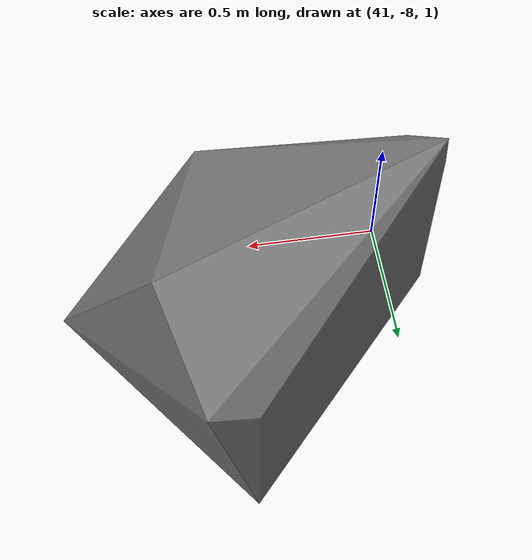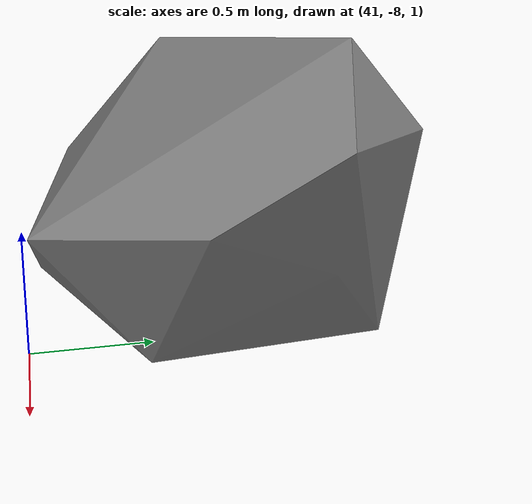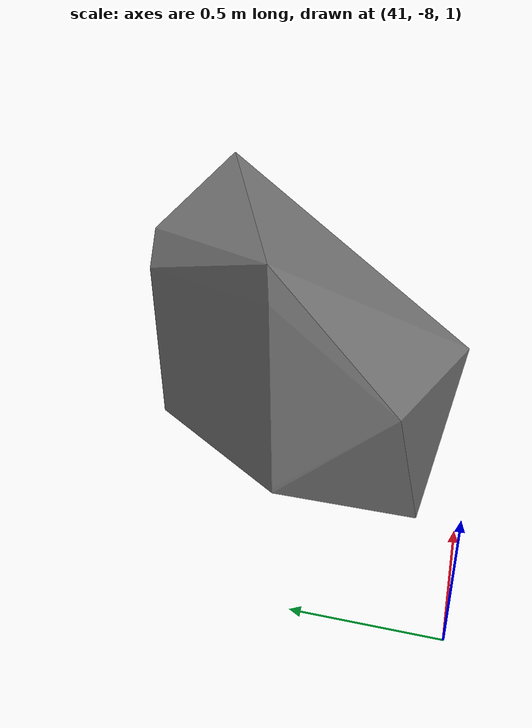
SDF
<sdf version="1.8">
 <model name="blue_mountains">
  <static>true</static>
  <link name="forest_24_19">
   <collision name="tree_26_trunk">
    <pose>41.23917 -7.153977 -0.1144466 0 0 2.291441</pose>
    <geometry><cylinder><radius>0.04930651</radius><length>2.83298</length></cylinder></geometry>
   </collision>
   <collision name="plant_26_crown_0">
    <pose>41.25218 -7.168797 -1.530936 0 0 2.291441</pose>
    <geometry>
     <mesh><uri>model://blue_mountains/meshes/canopy_7_0.dae</uri><scale>0.197226 0.197226 0.2130014</scale></mesh>
    </geometry>
   </collision>
   <collision name="plant_26_crown_1">
    <pose>41.25218 -7.168797 -1.530936 0 0 2.291441</pose>
    <geometry>
     <mesh><uri>model://blue_mountains/meshes/canopy_7_1.dae</uri><scale>0.197226 0.197226 0.2130014</scale></mesh>
    </geometry>
   </collision>
   <collision name="tree_27_trunk">
    <pose>42.59698 -2.985307 0.1404469 0 0 0.01901097</pose>
    <geometry><cylinder><radius>0.05149526</radius><length>3.089287</length></cylinder></geometry>
   </collision>
   <collision name="plant_27_crown_0">
    <pose>42.57639 -2.985699 -1.404197 0 0 0.01901097</pose>
    <geometry>
     <mesh>
      <uri>model://blue_mountains/meshes/canopy_3_0.dae</uri>
      <scale>0.2059811 0.2059811 0.2296741</scale>
     </mesh>
    </geometry>
   </collision>
   <collision name="plant_27_crown_1">
    <pose>42.57639 -2.985699 -1.404197 0 0 0.01901097</pose>
    <geometry>
     <mesh>
      <uri>model://blue_mountains/meshes/canopy_3_1.dae</uri>
      <scale>0.2059811 0.2059811 0.2296741</scale>
     </mesh>
    </geometry>
   </collision>
   <collision name="tree_29_trunk">
    <pose>49.03307 -8.363272 0.2687896 0 0 0.6293992</pose>
    <geometry><cylinder><radius>0.03886425</radius><length>2.408601</length></cylinder></geometry>
   </collision>
   <collision name="plant_29_crown_0">
    <pose>49.02051 -8.372423 -0.9355111 0 0 0.6293992</pose>
    <geometry>
     <mesh><uri>model://blue_mountains/meshes/canopy_1_0.dae</uri><scale>0.155457 0.155457 0.1779013</scale></mesh>
    </geometry>
   </collision>
   <collision name="plant_29_crown_1">
    <pose>49.02051 -8.372423 -0.9355111 0 0 0.6293992</pose>
    <geometry>
     <mesh><uri>model://blue_mountains/meshes/canopy_1_1.dae</uri><scale>0.155457 0.155457 0.1779013</scale></mesh>
    </geometry>
   </collision>
   <collision name="tree_37_trunk">
    <pose>48.14507 -5.320037 0.907001 0 0 0.9179355</pose>
    <geometry><cylinder><radius>0.06269066</radius><length>3.78658</length></cylinder></geometry>
   </collision>
   <collision name="plant_37_crown_0">
    <pose>48.12984 -5.339956 -0.9862888 0 0 0.9179355</pose>
    <geometry>
     <mesh>
      <uri>model://blue_mountains/meshes/canopy_3_0.dae</uri>
      <scale>0.2507626 0.2507626 0.2815146</scale>
     </mesh>
    </geometry>
   </collision>
   <collision name="plant_37_crown_1">
    <pose>48.12984 -5.339956 -0.9862888 0 0 0.9179355</pose>
    <geometry>
     <mesh>
      <uri>model://blue_mountains/meshes/canopy_3_1.dae</uri>
      <scale>0.2507626 0.2507626 0.2815146</scale>
     </mesh>
    </geometry>
   </collision>
   <collision name="tree_43_trunk">
    <pose>44.9219 -4.318987 0.06050891 0 0 1.81885</pose>
    <geometry><cylinder><radius>0.0564009</radius><length>2.728453</length></cylinder></geometry>
   </collision>
   <collision name="plant_43_crown_0">
    <pose>44.92744 -4.340857 -1.303717 0 0 1.81885</pose>
    <geometry>
     <mesh>
      <uri>model://blue_mountains/meshes/canopy_3_0.dae</uri>
      <scale>0.2256036 0.2256036 0.2028478</scale>
     </mesh>
    </geometry>
   </collision>
   <collision name="plant_43_crown_1">
    <pose>44.92744 -4.340857 -1.303717 0 0 1.81885</pose>
    <geometry>
     <mesh>
      <uri>model://blue_mountains/meshes/canopy_3_1.dae</uri>
      <scale>0.2256036 0.2256036 0.2028478</scale>
     </mesh>
    </geometry>
   </collision>
   <collision name="tree_45_trunk">
    <pose>45.7271 -4.829599 -0.253937 0 0 2.662113</pose>
    <geometry><cylinder><radius>0.04009444</radius><length>1.947935</length></cylinder></geometry>
   </collision>
   <collision name="plant_45_crown_0">
    <pose>45.74133 -4.836998 -1.227904 0 0 2.662113</pose>
    <geometry>
     <mesh>
      <uri>model://blue_mountains/meshes/canopy_1_0.dae</uri>
      <scale>0.1603777 0.1603777 0.143876</scale>
     </mesh>
    </geometry>
   </collision>
   <collision name="plant_45_crown_1">
    <pose>45.74133 -4.836998 -1.227904 0 0 2.662113</pose>
    <geometry>
     <mesh>
      <uri>model://blue_mountains/meshes/canopy_1_1.dae</uri>
      <scale>0.1603777 0.1603777 0.143876</scale>
     </mesh>
    </geometry>
   </collision>
   <collision name="tree_79_trunk">
    <pose>47.72966 -8.612094 0.01078934 0 0 1.369753</pose>
    <geometry><cylinder><radius>0.04150825</radius><length>2.034263</length></cylinder></geometry>
   </collision>
   <collision name="plant_79_crown_0">
    <pose>47.72635 -8.628363 -1.006342 0 0 1.369753</pose>
    <geometry>
     <mesh><uri>model://blue_mountains/meshes/canopy_4_0.dae</uri><scale>0.166033 0.166033 0.1515865</scale></mesh>
    </geometry>
   </collision>
   <collision name="plant_79_crown_1">
    <pose>47.72635 -8.628363 -1.006342 0 0 1.369753</pose>
    <geometry>
     <mesh><uri>model://blue_mountains/meshes/canopy_4_1.dae</uri><scale>0.166033 0.166033 0.1515865</scale></mesh>
    </geometry>
   </collision>
   <collision name="tree_93_trunk">
    <pose>44.7892 -3.872365 -0.09625691 0 0 -0.8977395</pose>
    <geometry><cylinder><radius>0.03836071</radius><length>2.430073</length></cylinder></geometry>
   </collision>
   <collision name="plant_93_crown_0">
    <pose>44.77964 -3.860367 -1.311293 0 0 -0.8977395</pose>
    <geometry>
     <mesh>
      <uri>model://blue_mountains/meshes/canopy_1_0.dae</uri>
      <scale>0.1534429 0.1534429 0.1794872</scale>
     </mesh>
    </geometry>
   </collision>
   <collision name="plant_93_crown_1">
    <pose>44.77964 -3.860367 -1.311293 0 0 -0.8977395</pose>
    <geometry>
     <mesh>
      <uri>model://blue_mountains/meshes/canopy_1_1.dae</uri>
      <scale>0.1534429 0.1534429 0.1794872</scale>
     </mesh>
    </geometry>
   </collision>
   <collision name="tree_126_trunk">
    <pose>43.08603 -8.754535 -0.06355896 0 0 2.874992</pose>
    <geometry><cylinder><radius>0.04795107</radius><length>2.719515</length></cylinder></geometry>
   </collision>
   <collision name="plant_126_crown_0">
    <pose>43.10453 -8.759588 -1.423316 0 0 2.874992</pose>
    <geometry>
     <mesh>
      <uri>model://blue_mountains/meshes/canopy_1_0.dae</uri>
      <scale>0.1918043 0.1918043 0.2008656</scale>
     </mesh>
    </geometry>
   </collision>
   <collision name="plant_126_crown_1">
    <pose>43.10453 -8.759588 -1.423316 0 0 2.874992</pose>
    <geometry>
     <mesh>
      <uri>model://blue_mountains/meshes/canopy_1_1.dae</uri>
      <scale>0.1918043 0.1918043 0.2008656</scale>
     </mesh>
    </geometry>
   </collision>
   <collision name="tree_178_trunk">
    <pose>46.14474 -0.08612637 0.2590178 0 0 2.139112</pose>
    <geometry><cylinder><radius>0.04142003</radius><length>2.334981</length></cylinder></geometry>
   </collision>
   <collision name="plant_178_crown_0">
    <pose>46.15366 -0.10009 -0.9084728 0 0 2.139112</pose>
    <geometry>
     <mesh>
      <uri>model://blue_mountains/meshes/canopy_1_0.dae</uri>
      <scale>0.1656801 0.1656801 0.1724636</scale>
     </mesh>
    </geometry>
   </collision>
   <collision name="plant_178_crown_1">
    <pose>46.15366 -0.10009 -0.9084728 0 0 2.139112</pose>
    <geometry>
     <mesh>
      <uri>model://blue_mountains/meshes/canopy_1_1.dae</uri>
      <scale>0.1656801 0.1656801 0.1724636</scale>
     </mesh>
    </geometry>
   </collision>
   <collision name="tree_180_trunk">
    <pose>49.07746 -7.136161 0.6830425 0 0 -1.596814</pose>
    <geometry><cylinder><radius>0.05448461</radius><length>3.204173</length></cylinder></geometry>
   </collision>
   <collision name="plant_180_crown_0">
    <pose>49.07803 -7.114374 -0.9190443 0 0 -1.596814</pose>
    <geometry>
     <mesh>
      <uri>model://blue_mountains/meshes/canopy_8_0.dae</uri>
      <scale>0.2179384 0.2179384 0.2384192</scale>
     </mesh>
    </geometry>
   </collision>
   <collision name="plant_180_crown_1">
    <pose>49.07803 -7.114374 -0.9190443 0 0 -1.596814</pose>
    <geometry>
     <mesh>
      <uri>model://blue_mountains/meshes/canopy_8_1.dae</uri>
      <scale>0.2179384 0.2179384 0.2384192</scale>
     </mesh>
    </geometry>
   </collision>
   <collision name="tree_183_trunk">
    <pose>45.35265 -6.954985 0.6009085 0 0 3.124162</pose>
    <geometry><cylinder><radius>0.05740998</radius><length>3.664733</length></cylinder></geometry>
   </collision>
   <collision name="plant_183_crown_0">
    <pose>45.37561 -6.955385 -1.231458 0 0 3.124162</pose>
    <geometry>
     <mesh>
      <uri>model://blue_mountains/meshes/canopy_0_0.dae</uri>
      <scale>0.2296399 0.2296399 0.270272</scale>
     </mesh>
    </geometry>
   </collision>
   <collision name="plant_183_crown_1">
    <pose>45.37561 -6.955385 -1.231458 0 0 3.124162</pose>
    <geometry>
     <mesh>
      <uri>model://blue_mountains/meshes/canopy_0_1.dae</uri>
      <scale>0.2296399 0.2296399 0.270272</scale>
     </mesh>
    </geometry>
   </collision>
   <collision name="tree_229_trunk">
    <pose>43.1249 -8.295154 0.07419359 0 0 -0.4515742</pose>
    <geometry><cylinder><radius>0.0608512</radius><length>2.995959</length></cylinder></geometry>
   </collision>
   <collision name="plant_229_crown_0">
    <pose>43.103 -8.284533 -1.423786 0 0 -0.4515742</pose>
    <geometry>
     <mesh>
      <uri>model://blue_mountains/meshes/canopy_2_0.dae</uri>
      <scale>0.2434048 0.2434048 0.2204288</scale>
     </mesh>
    </geometry>
   </collision>
   <collision name="plant_229_crown_1">
    <pose>43.103 -8.284533 -1.423786 0 0 -0.4515742</pose>
    <geometry>
     <mesh>
      <uri>model://blue_mountains/meshes/canopy_2_1.dae</uri>
      <scale>0.2434048 0.2434048 0.2204288</scale>
     </mesh>
    </geometry>
   </collision>
   <collision name="tree_236_trunk">
    <pose>45.48366 -7.73616 0.2999041 0 0 -1.682249</pose>
    <geometry><cylinder><radius>0.06570472</radius><length>3.009126</length></cylinder></geometry>
   </collision>
   <collision name="plant_236_crown_0">
    <pose>45.48659 -7.710041 -1.204659 0 0 -1.682249</pose>
    <geometry>
     <mesh><uri>model://blue_mountains/meshes/canopy_4_0.dae</uri><scale>0.2628189 0.2628189 0.22423</scale></mesh>
    </geometry>
   </collision>
   <collision name="plant_236_crown_1">
    <pose>45.48659 -7.710041 -1.204659 0 0 -1.682249</pose>
    <geometry>
     <mesh><uri>model://blue_mountains/meshes/canopy_4_1.dae</uri><scale>0.2628189 0.2628189 0.22423</scale></mesh>
    </geometry>
   </collision>
   <collision name="tree_240_trunk">
    <pose>49.59546 -4.356582 0.3143879 0 0 -2.191838</pose>
    <geometry><cylinder><radius>0.04521425</radius><length>2.285811</length></cylinder></geometry>
   </collision>
   <collision name="plant_240_crown_0">
    <pose>49.60599 -4.341873 -0.8285177 0 0 -2.191838</pose>
    <geometry>
     <mesh><uri>model://blue_mountains/meshes/canopy_8_0.dae</uri><scale>0.180857 0.180857 0.1700848</scale></mesh>
    </geometry>
   </collision>
   <collision name="plant_240_crown_1">
    <pose>49.60599 -4.341873 -0.8285177 0 0 -2.191838</pose>
    <geometry>
     <mesh><uri>model://blue_mountains/meshes/canopy_8_1.dae</uri><scale>0.180857 0.180857 0.1700848</scale></mesh>
    </geometry>
   </collision>
   <collision name="tree_265_trunk">
    <pose>40.57545 -6.441502 0.1171818 0 0 2.916521</pose>
    <geometry><cylinder><radius>0.06545936</radius><length>3.313856</length></cylinder></geometry>
   </collision>
   <collision name="plant_265_crown_0">
    <pose>40.60098 -6.447346 -1.539746 0 0 2.916521</pose>
    <geometry>
     <mesh>
      <uri>model://blue_mountains/meshes/canopy_3_0.dae</uri>
      <scale>0.2618374 0.2618374 0.2463698</scale>
     </mesh>
    </geometry>
   </collision>
   <collision name="plant_265_crown_1">
    <pose>40.60098 -6.447346 -1.539746 0 0 2.916521</pose>
    <geometry>
     <mesh>
      <uri>model://blue_mountains/meshes/canopy_3_1.dae</uri>
      <scale>0.2618374 0.2618374 0.2463698</scale>
     </mesh>
    </geometry>
   </collision>
   <collision name="tree_292_trunk">
    <pose>45.46919 -6.668233 -0.02580027 0 0 2.840801</pose>
    <geometry><cylinder><radius>0.03736026</radius><length>2.399995</length></cylinder></geometry>
   </collision>
   <collision name="plant_292_crown_0">
    <pose>45.48346 -6.672661 -1.225798 0 0 2.840801</pose>
    <geometry>
     <mesh><uri>model://blue_mountains/meshes/canopy_8_0.dae</uri><scale>0.149441 0.149441 0.1785812</scale></mesh>
    </geometry>
   </collision>
   <collision name="plant_292_crown_1">
    <pose>45.48346 -6.672661 -1.225798 0 0 2.840801</pose>
    <geometry>
     <mesh><uri>model://blue_mountains/meshes/canopy_8_1.dae</uri><scale>0.149441 0.149441 0.1785812</scale></mesh>
    </geometry>
   </collision>
   <collision name="tree_300_trunk">
    <pose>48.56059 -8.474123 0.4578595 0 0 2.789203</pose>
    <geometry><cylinder><radius>0.04589791</radius><length>2.830669</length></cylinder></geometry>
   </collision>
   <collision name="plant_300_crown_0">
    <pose>48.57782 -8.480459 -0.9574749 0 0 2.789203</pose>
    <geometry>
     <mesh>
      <uri>model://blue_mountains/meshes/canopy_7_0.dae</uri>
      <scale>0.1835916 0.1835916 0.2128276</scale>
     </mesh>
    </geometry>
   </collision>
   <collision name="plant_300_crown_1">
    <pose>48.57782 -8.480459 -0.9574749 0 0 2.789203</pose>
    <geometry>
     <mesh>
      <uri>model://blue_mountains/meshes/canopy_7_1.dae</uri>
      <scale>0.1835916 0.1835916 0.2128276</scale>
     </mesh>
    </geometry>
   </collision>
   <collision name="tree_327_trunk">
    <pose>41.61702 -1.313361 -0.04305975 0 0 0.3941661</pose>
    <geometry><cylinder><radius>0.04703884</radius><length>2.499358</length></cylinder></geometry>
   </collision>
   <collision name="plant_327_crown_0">
    <pose>41.59965 -1.320587 -1.292739 0 0 0.3941661</pose>
    <geometry>
     <mesh>
      <uri>model://blue_mountains/meshes/canopy_2_0.dae</uri>
      <scale>0.1881554 0.1881554 0.1838912</scale>
     </mesh>
    </geometry>
   </collision>
   <collision name="plant_327_crown_1">
    <pose>41.59965 -1.320587 -1.292739 0 0 0.3941661</pose>
    <geometry>
     <mesh>
      <uri>model://blue_mountains/meshes/canopy_2_1.dae</uri>
      <scale>0.1881554 0.1881554 0.1838912</scale>
     </mesh>
    </geometry>
   </collision>
   <collision name="tree_359_trunk">
    <pose>42.3341 -7.351432 -0.4856355 0 0 1.800667</pose>
    <geometry><cylinder><radius>0.04101682</radius><length>1.985521</length></cylinder></geometry>
   </collision>
   <collision name="plant_359_crown_0">
    <pose>42.33783 -7.367407 -1.478396 0 0 1.800667</pose>
    <geometry>
     <mesh>
      <uri>model://blue_mountains/meshes/canopy_2_0.dae</uri>
      <scale>0.1640673 0.1640673 0.1460855</scale>
     </mesh>
    </geometry>
   </collision>
   <collision name="plant_359_crown_1">
    <pose>42.33783 -7.367407 -1.478396 0 0 1.800667</pose>
    <geometry>
     <mesh>
      <uri>model://blue_mountains/meshes/canopy_2_1.dae</uri>
      <scale>0.1640673 0.1640673 0.1460855</scale>
     </mesh>
    </geometry>
   </collision>
   <collision name="tree_373_trunk">
    <pose>48.57778 -5.591656 0.6090079 0 0 -0.8131487</pose>
    <geometry><cylinder><radius>0.06794266</radius><length>3.112752</length></cylinder></geometry>
   </collision>
   <collision name="plant_373_crown_0">
    <pose>48.5591 -5.571913 -0.9473684 0 0 -0.8131487</pose>
    <geometry>
     <mesh>
      <uri>model://blue_mountains/meshes/canopy_8_0.dae</uri>
      <scale>0.2717707 0.2717707 0.2316167</scale>
     </mesh>
    </geometry>
   </collision>
   <collision name="plant_373_crown_1">
    <pose>48.5591 -5.571913 -0.9473684 0 0 -0.8131487</pose>
    <geometry>
     <mesh>
      <uri>model://blue_mountains/meshes/canopy_8_1.dae</uri>
      <scale>0.2717707 0.2717707 0.2316167</scale>
     </mesh>
    </geometry>
   </collision>
   <collision name="tree_375_trunk">
    <pose>45.18053 -0.6937688 0.300968 0 0 2.622844</pose>
    <geometry><cylinder><radius>0.0457836</radius><length>2.722182</length></cylinder></geometry>
   </collision>
   <collision name="plant_375_crown_0">
    <pose>45.19644 -0.7028484 -1.060123 0 0 2.622844</pose>
    <geometry>
     <mesh>
      <uri>model://blue_mountains/meshes/canopy_2_0.dae</uri>
      <scale>0.1831344 0.1831344 0.2002856</scale>
     </mesh>
    </geometry>
   </collision>
   <collision name="plant_375_crown_1">
    <pose>45.19644 -0.7028484 -1.060123 0 0 2.622844</pose>
    <geometry>
     <mesh>
      <uri>model://blue_mountains/meshes/canopy_2_1.dae</uri>
      <scale>0.1831344 0.1831344 0.2002856</scale>
     </mesh>
    </geometry>
   </collision>
   <collision name="tree_376_trunk">
    <pose>44.24864 -5.261884 -0.1442369 0 0 -2.101314</pose>
    <geometry><cylinder><radius>0.043041</radius><length>2.427704</length></cylinder></geometry>
   </collision>
   <collision name="plant_376_crown_0">
    <pose>44.25735 -5.247034 -1.358089 0 0 -2.101314</pose>
    <geometry>
     <mesh><uri>model://blue_mountains/meshes/canopy_8_0.dae</uri><scale>0.172164 0.172164 0.1806429</scale></mesh>
    </geometry>
   </collision>
   <collision name="plant_376_crown_1">
    <pose>44.25735 -5.247034 -1.358089 0 0 -2.101314</pose>
    <geometry>
     <mesh><uri>model://blue_mountains/meshes/canopy_8_1.dae</uri><scale>0.172164 0.172164 0.1806429</scale></mesh>
    </geometry>
   </collision>
   <collision name="tree_380_trunk">
    <pose>40.87386 -4.398573 -0.2697154 0 0 0.341718</pose>
    <geometry><cylinder><radius>0.04589292</radius><length>2.449193</length></cylinder></geometry>
   </collision>
   <collision name="plant_380_crown_0">
    <pose>40.85656 -4.404724 -1.494312 0 0 0.341718</pose>
    <geometry>
     <mesh>
      <uri>model://blue_mountains/meshes/canopy_5_0.dae</uri>
      <scale>0.1835717 0.1835717 0.1840925</scale>
     </mesh>
    </geometry>
   </collision>
   <collision name="plant_380_crown_1">
    <pose>40.85656 -4.404724 -1.494312 0 0 0.341718</pose>
    <geometry>
     <mesh>
      <uri>model://blue_mountains/meshes/canopy_5_1.dae</uri>
      <scale>0.1835717 0.1835717 0.1840925</scale>
     </mesh>
    </geometry>
   </collision>
   <collision name="tree_419_trunk">
    <pose>42.32854 -8.131957 -0.1697623 0 0 1.967634</pose>
    <geometry><cylinder><radius>0.0504277</radius><length>2.624495</length></cylinder></geometry>
   </collision>
   <collision name="plant_419_crown_0">
    <pose>42.33633 -8.15056 -1.48201 0 0 1.967634</pose>
    <geometry>
     <mesh>
      <uri>model://blue_mountains/meshes/canopy_4_0.dae</uri>
      <scale>0.2017108 0.2017108 0.1955686</scale>
     </mesh>
    </geometry>
   </collision>
   <collision name="plant_419_crown_1">
    <pose>42.33633 -8.15056 -1.48201 0 0 1.967634</pose>
    <geometry>
     <mesh>
      <uri>model://blue_mountains/meshes/canopy_4_1.dae</uri>
      <scale>0.2017108 0.2017108 0.1955686</scale>
     </mesh>
    </geometry>
   </collision>
   <collision name="tree_461_trunk">
    <pose>40.22717 -5.904491 0.1695084 0 0 -2.381311</pose>
    <geometry><cylinder><radius>0.06394959</radius><length>3.410368</length></cylinder></geometry>
   </collision>
   <collision name="plant_461_crown_0">
    <pose>40.24571 -5.886864 -1.535676 0 0 -2.381311</pose>
    <geometry>
     <mesh>
      <uri>model://blue_mountains/meshes/canopy_4_0.dae</uri>
      <scale>0.2557984 0.2557984 0.2541293</scale>
     </mesh>
    </geometry>
   </collision>
   <collision name="plant_461_crown_1">
    <pose>40.24571 -5.886864 -1.535676 0 0 -2.381311</pose>
    <geometry>
     <mesh>
      <uri>model://blue_mountains/meshes/canopy_4_1.dae</uri>
      <scale>0.2557984 0.2557984 0.2541293</scale>
     </mesh>
    </geometry>
   </collision>
   <visual name="forest_visual">
    <geometry><mesh><uri>model://blue_mountains/meshes/forest_24_19.dae</uri></mesh></geometry>
    <cast_shadows>false</cast_shadows>
   </visual>
  </link>
 </model>
</sdf>
